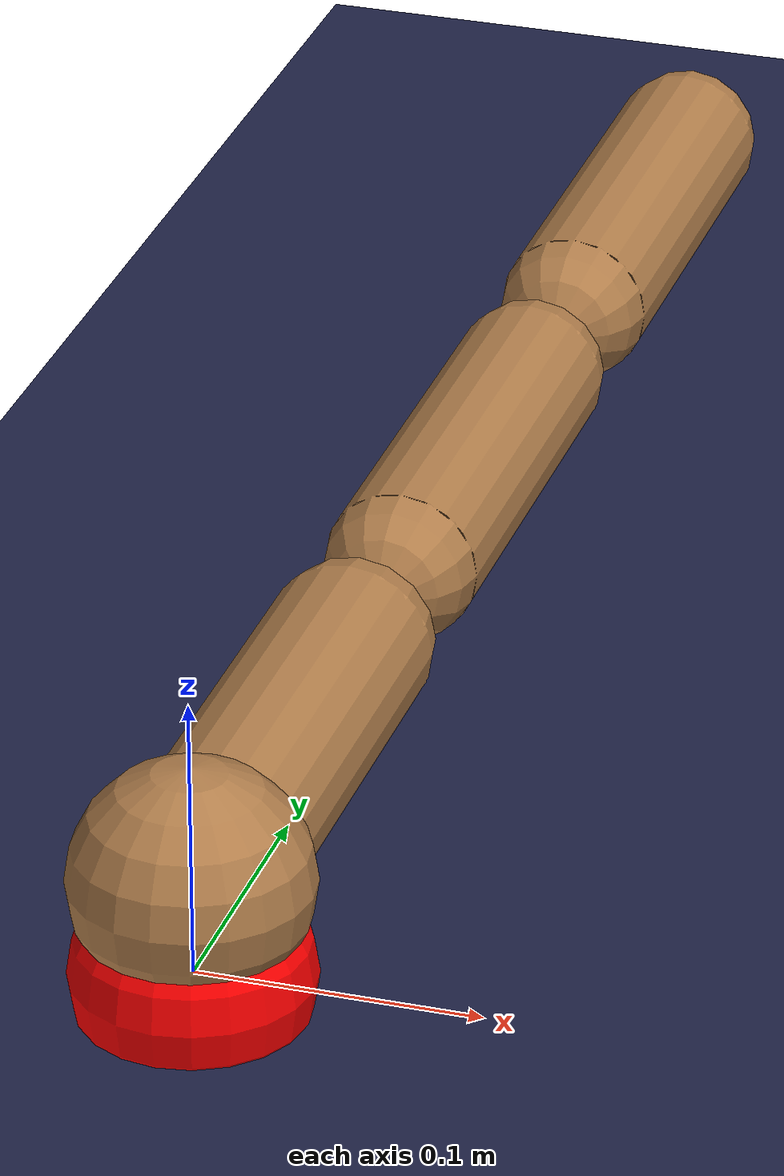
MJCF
<mujoco model="planar point mass">
    <compiler angle="radian"/>
    <visual>
        <quality shadowsize="2048" />
        <headlight ambient="0.4 0.4 0.4" diffuse="0.8 0.8 0.8" specular="0.1 0.1 0.1" />
    </visual>

    <option impratio="10" iterations="1" ls_iterations="4" timestep="0.01">
        <flag eulerdamp="disable"/>
    </option>

    <custom>
        <numeric data="15" name="max_contact_points"/>
        <numeric data="15" name="max_geom_pairs"/>
    </custom>

    <asset>
        <texture type="skybox" name="skybox" builtin="gradient" mark="random" rgb1="0.4 0.6 0.8" rgb2="0 0 0" markrgb="1 1 1" width="800" height="4800" />
        <texture type="2d" name="grid" builtin="checker" mark="edge" rgb1="0.1 0.2 0.3" rgb2="0.2 0.3 0.4" markrgb="0.2 0.3 0.4" width="300" height="300" />
        <material name="grid" texture="grid" texuniform="true" reflectance="0.2" />
        <material name="self" rgba="0.7 0.5 0.3 1" />
        <material name="self_default" rgba="0.7 0.5 0.3 1" />
        <material name="self_highlight" rgba="0 0.5 0.3 1" />
        <material name="effector" rgba="0.7 0.4 0.2 1" />
        <material name="effector_default" rgba="0.7 0.4 0.2 1" />
        <material name="effector_highlight" rgba="0 0.5 0.3 1" />
        <material name="decoration" rgba="0.3 0.5 0.7 1" />
        <material name="eye" rgba="0 0.2 1 1" />
        <material name="target" rgba="0.6 0.3 0.3 1" />
        <material name="target_default" rgba="0.6 0.3 0.3 1" />
        <material name="target_highlight" rgba="0.6 0.3 0.3 0.4" />
    </asset>

    <worldbody>
        <camera name="fixed" pos="0 0 0.75" />
        <light name="light" pos="0 0 1" dir="0 0 -1" />
        <geom name="ground" size="1 1 0.1" pos="-0.0 0 -0.013" type="plane" rgba=".123 .140 .28 1" contype="1" conaffinity="2"/>

        <body name ="finger" pos="0.0 0.0 0.035" quat="0.707107 0.707107 0 0">
            <joint name="proximal" range="-6.28 6.28" axis="0 -1 0" limited="false" armature="2" damping="1"/>
            <geom name="proximal" type="capsule" material="self" size=".03" fromto="0 0 0 0 0 -.17" contype="1" conaffinity="2"  mass=".5"/>
            <body name="distal" pos="0 0 -.23">
                <joint name="distal" range="-3 3" axis="0 -1 0" limited="true" armature="2" damping="1"/>
                <geom name="distal" type="capsule" size=".028" material="self" fromto="0 0 0 0 0 -.16" contype="1" conaffinity="2" mass="0.25"/>
                <body name="distal2" pos="0 0 -.22">
                    <joint name="distal2" range="-3 3" axis="0 -1 0" limited="true" armature="2" damping="1"/>
                    <geom name="distal2" type="capsule" size=".028" material="self" fromto="0 0 0 0 0 -.16" contype="1" conaffinity="2"  mass="0.25"/>
                </body>
            </body>
        </body>

        <body name="object" pos="0.0 0.0 0.035">
            <joint type="free" damping="0.001"/>
            <camera name="cam0" pos="0 -0.3 0.3" xyaxes="1 0 0 0 0.7 0.7"/>
            <geom name="pointmass" type="sphere" size=".042" material="self" mass="0.01" condim="3"  group="2" solimp="0.1 0.95 0.1 0.5 2" solref="0.02 1.0"/>
            <site name="sphere_type" size="0.042"/>
        </body>

        <body mocap="true" name="mocap_target">
            <geom type="sphere" size="0.042" rgba="1 0 0 1" contype="0" conaffinity="0"/>
        </body>
    </worldbody>

    <actuator>
        <general name="proximal" joint="proximal" ctrlrange="-2 2" />
        <general name="distal" joint="distal"  ctrlrange="-1 1" />
        <general name="distal2" joint="distal2" ctrlrange="-1 1" />
    </actuator>

    <sensor>
        <touch name="touch_sphere" site="sphere_type"/>
    </sensor>
</mujoco>
